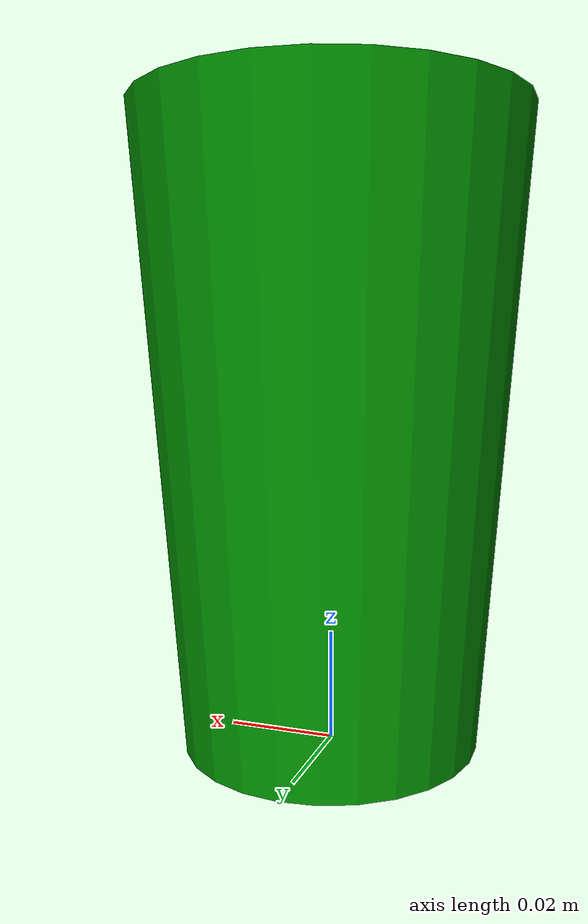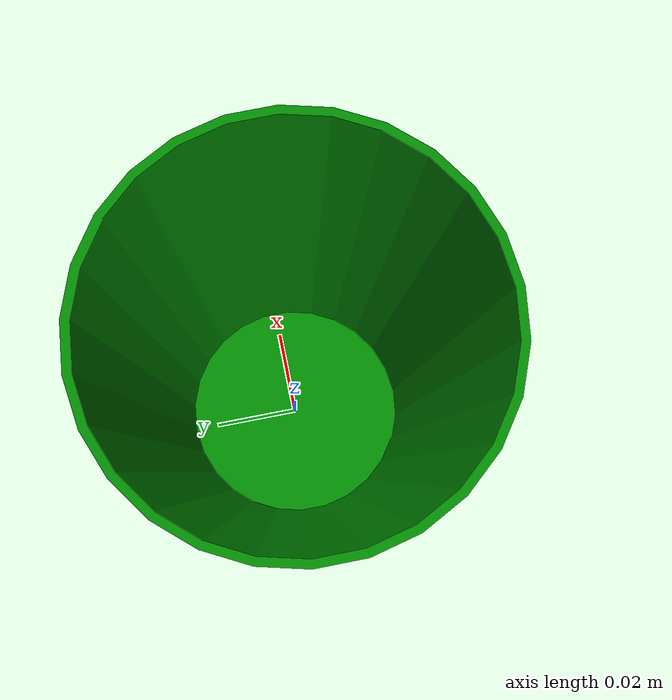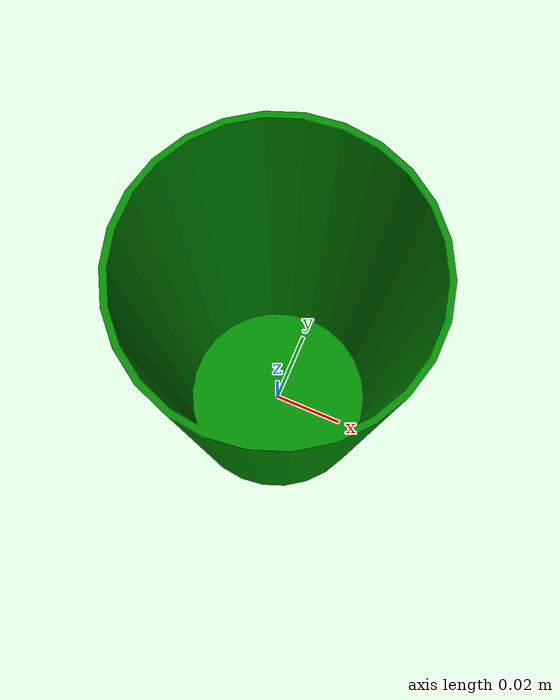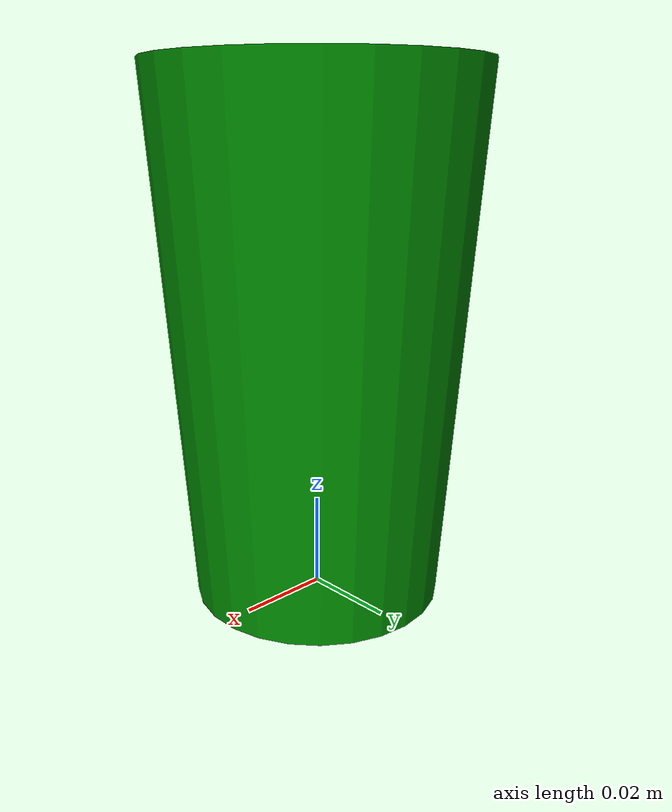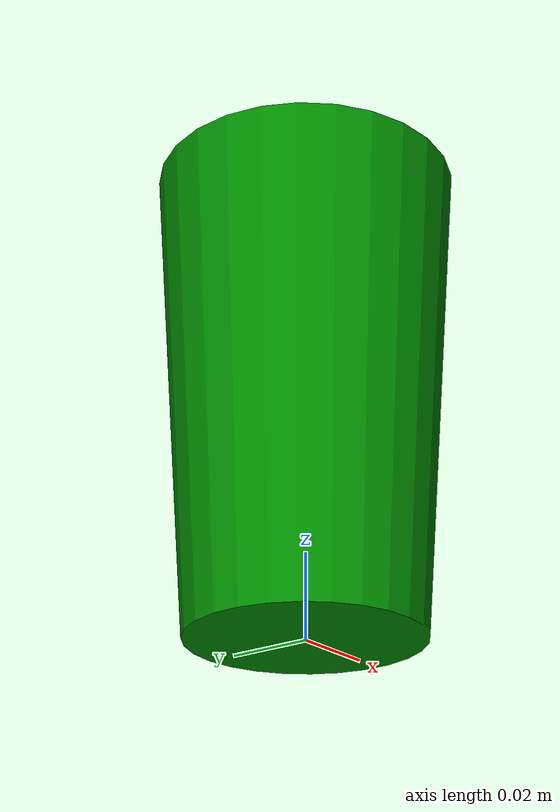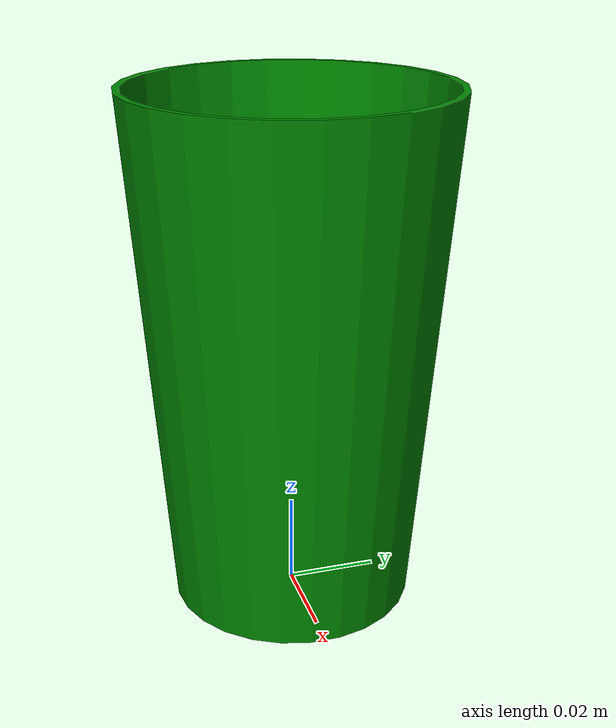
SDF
<?xml version='1.0'?>
<sdf version="1.4">
  <model name="cup_green">
    <pose>0 0 0 0 0 0</pose>
    <static>false</static>

    <link name="cup">
      <inertial>
        <pose>0 0 0.0549 0 0 0</pose>
        <mass>0.0457</mass>
        <inertia>
          <ixx>0.00007880</ixx>
          <ixy>0.0</ixy>
          <ixz>0.0</ixz>
          <iyy>0.00007880</iyy>
          <iyz>0.0</iyz>
          <izz>0.00004316</izz>
        </inertia>
      </inertial>

      <collision name="cup_collision">
        <pose>0 0 0.0575 0 0 0</pose>
        <geometry>
          <cylinder>
            <length>0.115</length>
            <radius>0.036</radius>
          </cylinder>
        </geometry>
        <surface>
          <friction>
            <ode>
              <mu>0.5</mu>
              <mu2>0.5</mu2>
            </ode>
          </friction>
        </surface>
      </collision>

      <visual name="cup_visual">
        <pose>0 0 0.0575 0 0 0</pose>
        <geometry>
          <mesh>
            <uri>model://cup_green/meshes/cup_green.dae</uri>
            <scale>1 1 1 </scale>
          </mesh>
        </geometry>
      </visual>
    </link>
  </model>
</sdf>
